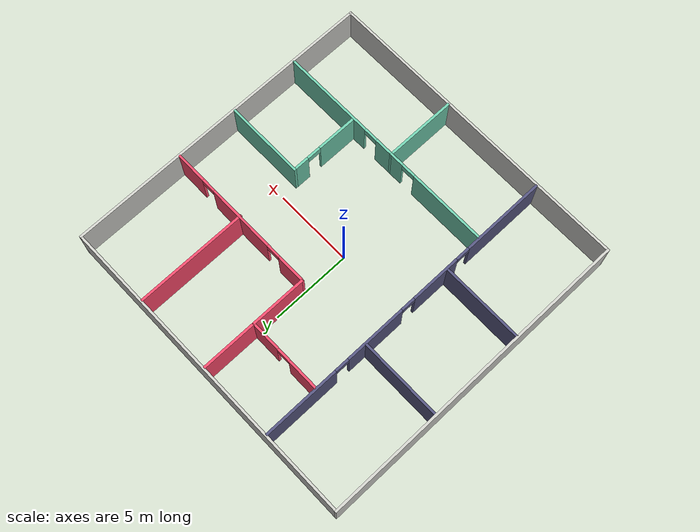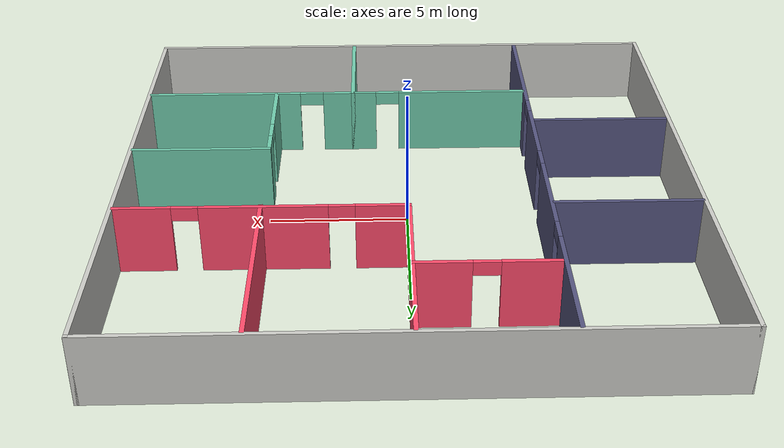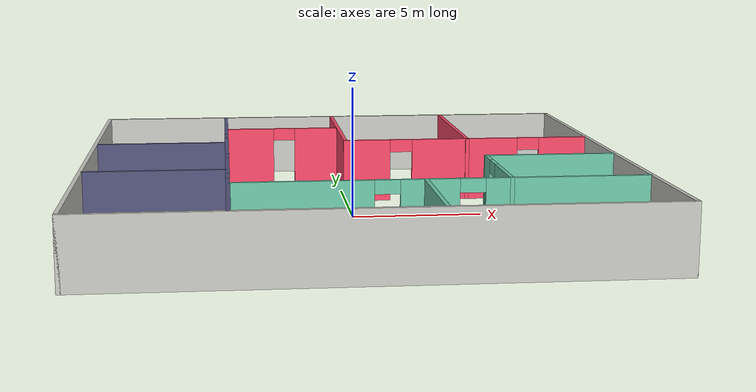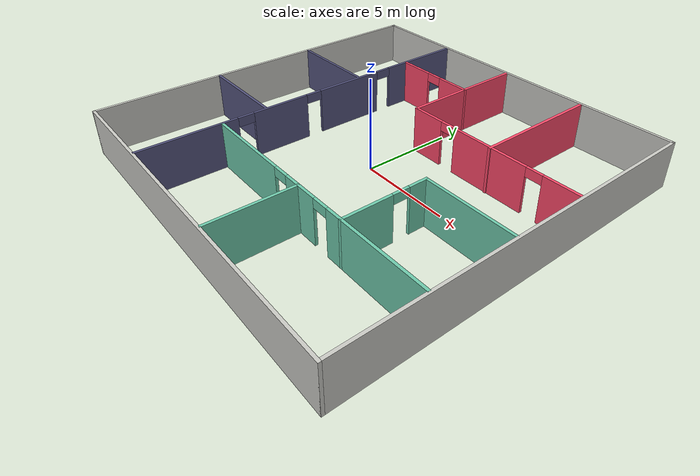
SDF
<?xml version='1.0'?>
<sdf version='1.6'>
  <model name='building'>
    <pose frame=''>0 0 0 0 -0 0</pose>
    <link name='Wall_0'>
      <collision name='Wall_0_Collision'>
        <geometry>
          <box>
            <size>20.15 0.15 2.5</size>
          </box>
        </geometry>
        <pose frame=''>0 0 1.25 0 -0 0</pose>
      </collision>
      <visual name='Wall_0_Visual'>
        <pose frame=''>0 0 1.25 0 -0 0</pose>
        <geometry>
          <box>
            <size>20.15 0.15 2.5</size>
          </box>
        </geometry>
        <material>
          <script>
            <uri>file://media/materials/scripts/gazebo.material</uri>
            <name>Gazebo/CeilingTiled</name>
          </script>
          <ambient>1 1 1 1</ambient>
        </material>
        <meta>
          <layer>0</layer>
        </meta>
      </visual>
      <pose frame=''>0 -10 0 0 -0 0</pose>
    </link>
    <link name='Wall_11'>
      <collision name='Wall_11_Collision'>
        <geometry>
          <box>
            <size>4.55 0.15 2.5</size>
          </box>
        </geometry>
        <pose frame=''>0 0 1.25 0 -0 0</pose>
      </collision>
      <visual name='Wall_11_Visual'>
        <pose frame=''>0 0 1.25 0 -0 0</pose>
        <geometry>
          <box>
            <size>4.55 0.15 2.5</size>
          </box>
        </geometry>
        <material>
          <script>
            <uri>file://media/materials/scripts/gazebo.material</uri>
            <name>Gazebo/Grey</name>
          </script>
          <ambient>0.435294 0.796078 0.67451 1</ambient>
        </material>
        <meta>
          <layer>0</layer>
        </meta>
      </visual>
      <pose frame=''>2 -7.7 0 0 0 -1.5708</pose>
    </link>
    <link name='Wall_13'>
      <pose frame=''>-2.35 6.5 0 0 -0 0</pose>
      <visual name='Wall_13_Visual_0'>
        <pose frame=''>-1.42755 0 1.25 0 -0 0</pose>
        <geometry>
          <box>
            <size>1.99489 0.15 2.5</size>
          </box>
        </geometry>
        <material>
          <script>
            <uri>file://media/materials/scripts/gazebo.material</uri>
            <name>Gazebo/Grey</name>
          </script>
          <ambient>1 0.290196 0.419608 1</ambient>
        </material>
        <meta>
          <layer>0</layer>
        </meta>
      </visual>
      <collision name='Wall_13_Collision_0'>
        <geometry>
          <box>
            <size>1.99489 0.15 2.5</size>
          </box>
        </geometry>
        <pose frame=''>-1.42755 0 1.25 0 -0 0</pose>
      </collision>
      <visual name='Wall_13_Visual_1'>
        <pose frame=''>1.44745 0 1.25 0 -0 0</pose>
        <geometry>
          <box>
            <size>1.95511 0.15 2.5</size>
          </box>
        </geometry>
        <material>
          <script>
            <uri>file://media/materials/scripts/gazebo.material</uri>
            <name>Gazebo/Grey</name>
          </script>
          <ambient>1 0.290196 0.419608 1</ambient>
        </material>
        <meta>
          <layer>0</layer>
        </meta>
      </visual>
      <collision name='Wall_13_Collision_1'>
        <geometry>
          <box>
            <size>1.95511 0.15 2.5</size>
          </box>
        </geometry>
        <pose frame=''>1.44745 0 1.25 0 -0 0</pose>
      </collision>
      <visual name='Wall_13_Visual_2'>
        <pose frame=''>0.019894 0 2.25 0 -0 0</pose>
        <geometry>
          <box>
            <size>0.9 0.15 0.5</size>
          </box>
        </geometry>
        <material>
          <script>
            <uri>file://media/materials/scripts/gazebo.material</uri>
            <name>Gazebo/Grey</name>
          </script>
          <ambient>1 0.290196 0.419608 1</ambient>
        </material>
        <meta>
          <layer>0</layer>
        </meta>
      </visual>
      <collision name='Wall_13_Collision_2'>
        <geometry>
          <box>
            <size>0.9 0.15 0.5</size>
          </box>
        </geometry>
        <pose frame=''>0.019894 0 2.25 0 -0 0</pose>
      </collision>
    </link>
    <link name='Wall_19'>
      <collision name='Wall_19_Collision'>
        <geometry>
          <box>
            <size>7.05 0.15 2.5</size>
          </box>
        </geometry>
        <pose frame=''>0 0 1.25 0 -0 0</pose>
      </collision>
      <visual name='Wall_19_Visual'>
        <pose frame=''>0 0 1.25 0 -0 0</pose>
        <geometry>
          <box>
            <size>7.05 0.15 2.5</size>
          </box>
        </geometry>
        <material>
          <script>
            <uri>file://media/materials/scripts/gazebo.material</uri>
            <name>Gazebo/Grey</name>
          </script>
          <ambient>1 0.290196 0.419608 1</ambient>
        </material>
        <meta>
          <layer>0</layer>
        </meta>
      </visual>
      <pose frame=''>5 6.45 0 0 -0 1.5708</pose>
    </link>
    <link name='Wall_2'>
      <collision name='Wall_2_Collision'>
        <geometry>
          <box>
            <size>20.15 0.15 2.5</size>
          </box>
        </geometry>
        <pose frame=''>0 0 1.25 0 -0 0</pose>
      </collision>
      <visual name='Wall_2_Visual'>
        <pose frame=''>0 0 1.25 0 -0 0</pose>
        <geometry>
          <box>
            <size>20.15 0.15 2.5</size>
          </box>
        </geometry>
        <material>
          <script>
            <uri>file://media/materials/scripts/gazebo.material</uri>
            <name>Gazebo/CeilingTiled</name>
          </script>
          <ambient>1 1 1 1</ambient>
        </material>
        <meta>
          <layer>0</layer>
        </meta>
      </visual>
      <pose frame=''>-10 0 0 0 -0 1.5708</pose>
    </link>
    <link name='Wall_21'>
      <collision name='Wall_21_Collision'>
        <geometry>
          <box>
            <size>5.15 0.15 2.5</size>
          </box>
        </geometry>
        <pose frame=''>0 0 1.25 0 -0 0</pose>
      </collision>
      <visual name='Wall_21_Visual'>
        <pose frame=''>0 0 1.25 0 -0 0</pose>
        <geometry>
          <box>
            <size>5.15 0.15 2.5</size>
          </box>
        </geometry>
        <material>
          <script>
            <uri>file://media/materials/scripts/gazebo.material</uri>
            <name>Gazebo/Grey</name>
          </script>
          <ambient>0.333333 0.333333 0.498039 1</ambient>
        </material>
        <meta>
          <layer>0</layer>
        </meta>
      </visual>
      <pose frame=''>-7.4 3 0 0 -0 3.14159</pose>
    </link>
    <link name='Wall_23'>
      <collision name='Wall_23_Collision'>
        <geometry>
          <box>
            <size>6.95695 0.15 2.5</size>
          </box>
        </geometry>
        <pose frame=''>0 0 1.25 0 -0 0</pose>
      </collision>
      <visual name='Wall_23_Visual'>
        <pose frame=''>0 0 1.25 0 -0 0</pose>
        <geometry>
          <box>
            <size>6.95695 0.15 2.5</size>
          </box>
        </geometry>
        <material>
          <script>
            <uri>file://media/materials/scripts/gazebo.material</uri>
            <name>Gazebo/Grey</name>
          </script>
          <ambient>1 0.290196 0.419608 1</ambient>
        </material>
        <meta>
          <layer>0</layer>
        </meta>
      </visual>
      <pose frame=''>0 6.49652 0 0 -0 1.5708</pose>
    </link>
    <link name='Wall_25'>
      <pose frame=''>4.95 3.04652 0 0 -0 0</pose>
      <visual name='Wall_25_Visual_0'>
        <pose frame=''>-4.07462 0 1.25 0 -0 0</pose>
        <geometry>
          <box>
            <size>1.90076 0.15 2.5</size>
          </box>
        </geometry>
        <material>
          <script>
            <uri>file://media/materials/scripts/gazebo.material</uri>
            <name>Gazebo/Grey</name>
          </script>
          <ambient>1 0.290196 0.419608 1</ambient>
        </material>
        <meta>
          <layer>0</layer>
        </meta>
      </visual>
      <collision name='Wall_25_Collision_0'>
        <geometry>
          <box>
            <size>1.90076 0.15 2.5</size>
          </box>
        </geometry>
        <pose frame=''>-4.07462 0 1.25 0 -0 0</pose>
      </collision>
      <visual name='Wall_25_Visual_1'>
        <pose frame=''>-0.045637 0 1.25 0 -0 0</pose>
        <geometry>
          <box>
            <size>4.3572 0.15 2.5</size>
          </box>
        </geometry>
        <material>
          <script>
            <uri>file://media/materials/scripts/gazebo.material</uri>
            <name>Gazebo/Grey</name>
          </script>
          <ambient>1 0.290196 0.419608 1</ambient>
        </material>
        <meta>
          <layer>0</layer>
        </meta>
      </visual>
      <collision name='Wall_25_Collision_1'>
        <geometry>
          <box>
            <size>4.3572 0.15 2.5</size>
          </box>
        </geometry>
        <pose frame=''>-0.045637 0 1.25 0 -0 0</pose>
      </collision>
      <visual name='Wall_25_Visual_2'>
        <pose frame=''>4.02898 0 1.25 0 -0 0</pose>
        <geometry>
          <box>
            <size>1.99204 0.15 2.5</size>
          </box>
        </geometry>
        <material>
          <script>
            <uri>file://media/materials/scripts/gazebo.material</uri>
            <name>Gazebo/Grey</name>
          </script>
          <ambient>1 0.290196 0.419608 1</ambient>
        </material>
        <meta>
          <layer>0</layer>
        </meta>
      </visual>
      <collision name='Wall_25_Collision_2'>
        <geometry>
          <box>
            <size>1.99204 0.15 2.5</size>
          </box>
        </geometry>
        <pose frame=''>4.02898 0 1.25 0 -0 0</pose>
      </collision>
      <visual name='Wall_25_Visual_3'>
        <pose frame=''>-2.67424 0 2.25 0 -0 0</pose>
        <geometry>
          <box>
            <size>0.9 0.15 0.5</size>
          </box>
        </geometry>
        <material>
          <script>
            <uri>file://media/materials/scripts/gazebo.material</uri>
            <name>Gazebo/Grey</name>
          </script>
          <ambient>1 0.290196 0.419608 1</ambient>
        </material>
        <meta>
          <layer>0</layer>
        </meta>
      </visual>
      <collision name='Wall_25_Collision_3'>
        <geometry>
          <box>
            <size>0.9 0.15 0.5</size>
          </box>
        </geometry>
        <pose frame=''>-2.67424 0 2.25 0 -0 0</pose>
      </collision>
      <visual name='Wall_25_Visual_4'>
        <pose frame=''>2.58296 0 2.25 0 -0 0</pose>
        <geometry>
          <box>
            <size>0.9 0.15 0.5</size>
          </box>
        </geometry>
        <material>
          <script>
            <uri>file://media/materials/scripts/gazebo.material</uri>
            <name>Gazebo/Grey</name>
          </script>
          <ambient>1 0.290196 0.419608 1</ambient>
        </material>
        <meta>
          <layer>0</layer>
        </meta>
      </visual>
      <collision name='Wall_25_Collision_4'>
        <geometry>
          <box>
            <size>0.9 0.15 0.5</size>
          </box>
        </geometry>
        <pose frame=''>2.58296 0 2.25 0 -0 0</pose>
      </collision>
    </link>
    <link name='Wall_27'>
      <pose frame=''>5 -3.25 0 0 0 -1.5708</pose>
      <visual name='Wall_27_Visual_0'>
        <pose frame=''>-1.79644 0 1.25 0 -0 0</pose>
        <geometry>
          <box>
            <size>1.05711 0.15 2.5</size>
          </box>
        </geometry>
        <material>
          <script>
            <uri>file://media/materials/scripts/gazebo.material</uri>
            <name>Gazebo/Grey</name>
          </script>
          <ambient>0.435294 0.796078 0.67451 1</ambient>
        </material>
        <meta>
          <layer>0</layer>
        </meta>
      </visual>
      <collision name='Wall_27_Collision_0'>
        <geometry>
          <box>
            <size>1.05711 0.15 2.5</size>
          </box>
        </geometry>
        <pose frame=''>-1.79644 0 1.25 0 -0 0</pose>
      </collision>
      <visual name='Wall_27_Visual_1'>
        <pose frame=''>0.978556 0 1.25 0 -0 0</pose>
        <geometry>
          <box>
            <size>2.69289 0.15 2.5</size>
          </box>
        </geometry>
        <material>
          <script>
            <uri>file://media/materials/scripts/gazebo.material</uri>
            <name>Gazebo/Grey</name>
          </script>
          <ambient>0.435294 0.796078 0.67451 1</ambient>
        </material>
        <meta>
          <layer>0</layer>
        </meta>
      </visual>
      <collision name='Wall_27_Collision_1'>
        <geometry>
          <box>
            <size>2.69289 0.15 2.5</size>
          </box>
        </geometry>
        <pose frame=''>0.978556 0 1.25 0 -0 0</pose>
      </collision>
      <visual name='Wall_27_Visual_2'>
        <pose frame=''>-0.817888 0 2.25 0 -0 0</pose>
        <geometry>
          <box>
            <size>0.9 0.15 0.5</size>
          </box>
        </geometry>
        <material>
          <script>
            <uri>file://media/materials/scripts/gazebo.material</uri>
            <name>Gazebo/Grey</name>
          </script>
          <ambient>0.435294 0.796078 0.67451 1</ambient>
        </material>
        <meta>
          <layer>0</layer>
        </meta>
      </visual>
      <collision name='Wall_27_Collision_2'>
        <geometry>
          <box>
            <size>0.9 0.15 0.5</size>
          </box>
        </geometry>
        <pose frame=''>-0.817888 0 2.25 0 -0 0</pose>
      </collision>
    </link>
    <link name='Wall_29'>
      <collision name='Wall_29_Collision'>
        <geometry>
          <box>
            <size>5.05 0.15 2.5</size>
          </box>
        </geometry>
        <pose frame=''>0 0 1.25 0 -0 0</pose>
      </collision>
      <visual name='Wall_29_Visual'>
        <pose frame=''>0 0 1.25 0 -0 0</pose>
        <geometry>
          <box>
            <size>5.05 0.15 2.5</size>
          </box>
        </geometry>
        <material>
          <script>
            <uri>file://media/materials/scripts/gazebo.material</uri>
            <name>Gazebo/Grey</name>
          </script>
          <ambient>0.435294 0.796078 0.67451 1</ambient>
        </material>
        <meta>
          <layer>0</layer>
        </meta>
      </visual>
      <pose frame=''>7.45 -1 0 0 -0 0</pose>
    </link>
    <link name='Wall_3'>
      <collision name='Wall_3_Collision'>
        <geometry>
          <box>
            <size>20.15 0.15 2.5</size>
          </box>
        </geometry>
        <pose frame=''>0 0 1.25 0 -0 0</pose>
      </collision>
      <visual name='Wall_3_Visual'>
        <pose frame=''>0 0 1.25 0 -0 0</pose>
        <geometry>
          <box>
            <size>20.15 0.15 2.5</size>
          </box>
        </geometry>
        <material>
          <script>
            <uri>file://media/materials/scripts/gazebo.material</uri>
            <name>Gazebo/CeilingTiled</name>
          </script>
          <ambient>1 1 1 1</ambient>
        </material>
        <meta>
          <layer>0</layer>
        </meta>
      </visual>
      <pose frame=''>0 10 0 0 -0 0</pose>
    </link>
    <link name='Wall_31'>
      <collision name='Wall_31_Collision'>
        <geometry>
          <box>
            <size>5.15 0.15 2.5</size>
          </box>
        </geometry>
        <pose frame=''>0 0 1.25 0 -0 0</pose>
      </collision>
      <visual name='Wall_31_Visual'>
        <pose frame=''>0 0 1.25 0 -0 0</pose>
        <geometry>
          <box>
            <size>5.15 0.15 2.5</size>
          </box>
        </geometry>
        <material>
          <script>
            <uri>file://media/materials/scripts/gazebo.material</uri>
            <name>Gazebo/Grey</name>
          </script>
          <ambient>0.333333 0.333333 0.498039 1</ambient>
        </material>
        <meta>
          <layer>0</layer>
        </meta>
      </visual>
      <pose frame=''>-7.4 -3 0 0 -0 3.14159</pose>
    </link>
    <link name='Wall_4'>
      <collision name='Wall_4_Collision'>
        <geometry>
          <box>
            <size>20.15 0.15 2.5</size>
          </box>
        </geometry>
        <pose frame=''>0 0 1.25 0 -0 0</pose>
      </collision>
      <visual name='Wall_4_Visual'>
        <pose frame=''>0 0 1.25 0 -0 0</pose>
        <geometry>
          <box>
            <size>20.15 0.15 2.5</size>
          </box>
        </geometry>
        <material>
          <script>
            <uri>file://media/materials/scripts/gazebo.material</uri>
            <name>Gazebo/CeilingTiled</name>
          </script>
          <ambient>1 1 1 1</ambient>
        </material>
        <meta>
          <layer>0</layer>
        </meta>
      </visual>
      <pose frame=''>10 0 0 0 0 -1.5708</pose>
    </link>
    <link name='Wall_6'>
      <pose frame=''>-4.8 0 0 0 -0 1.5708</pose>
      <visual name='Wall_6_Visual_0'>
        <pose frame=''>-7.31251 0 1.25 0 -0 0</pose>
        <geometry>
          <box>
            <size>5.32498 0.15 2.5</size>
          </box>
        </geometry>
        <material>
          <script>
            <uri>file://media/materials/scripts/gazebo.material</uri>
            <name>Gazebo/Grey</name>
          </script>
          <ambient>0.333333 0.333333 0.498039 1</ambient>
        </material>
        <meta>
          <layer>0</layer>
        </meta>
      </visual>
      <collision name='Wall_6_Collision_0'>
        <geometry>
          <box>
            <size>5.32498 0.15 2.5</size>
          </box>
        </geometry>
        <pose frame=''>-7.31251 0 1.25 0 -0 0</pose>
      </collision>
      <visual name='Wall_6_Visual_1'>
        <pose frame=''>-2.15297 0 1.25 0 -0 0</pose>
        <geometry>
          <box>
            <size>3.1941 0.15 2.5</size>
          </box>
        </geometry>
        <material>
          <script>
            <uri>file://media/materials/scripts/gazebo.material</uri>
            <name>Gazebo/Grey</name>
          </script>
          <ambient>0.333333 0.333333 0.498039 1</ambient>
        </material>
        <meta>
          <layer>0</layer>
        </meta>
      </visual>
      <collision name='Wall_6_Collision_1'>
        <geometry>
          <box>
            <size>3.1941 0.15 2.5</size>
          </box>
        </geometry>
        <pose frame=''>-2.15297 0 1.25 0 -0 0</pose>
      </collision>
      <visual name='Wall_6_Visual_2'>
        <pose frame=''>2.29006 0 1.25 0 -0 0</pose>
        <geometry>
          <box>
            <size>3.89196 0.15 2.5</size>
          </box>
        </geometry>
        <material>
          <script>
            <uri>file://media/materials/scripts/gazebo.material</uri>
            <name>Gazebo/Grey</name>
          </script>
          <ambient>0.333333 0.333333 0.498039 1</ambient>
        </material>
        <meta>
          <layer>0</layer>
        </meta>
      </visual>
      <collision name='Wall_6_Collision_2'>
        <geometry>
          <box>
            <size>3.89196 0.15 2.5</size>
          </box>
        </geometry>
        <pose frame=''>2.29006 0 1.25 0 -0 0</pose>
      </collision>
      <visual name='Wall_6_Visual_3'>
        <pose frame=''>7.55552 0 1.25 0 -0 0</pose>
        <geometry>
          <box>
            <size>4.83895 0.15 2.5</size>
          </box>
        </geometry>
        <material>
          <script>
            <uri>file://media/materials/scripts/gazebo.material</uri>
            <name>Gazebo/Grey</name>
          </script>
          <ambient>0.333333 0.333333 0.498039 1</ambient>
        </material>
        <meta>
          <layer>0</layer>
        </meta>
      </visual>
      <collision name='Wall_6_Collision_3'>
        <geometry>
          <box>
            <size>4.83895 0.15 2.5</size>
          </box>
        </geometry>
        <pose frame=''>7.55552 0 1.25 0 -0 0</pose>
      </collision>
      <visual name='Wall_6_Visual_4'>
        <pose frame=''>-4.20002 0 2.25 0 -0 0</pose>
        <geometry>
          <box>
            <size>0.9 0.15 0.5</size>
          </box>
        </geometry>
        <material>
          <script>
            <uri>file://media/materials/scripts/gazebo.material</uri>
            <name>Gazebo/Grey</name>
          </script>
          <ambient>0.333333 0.333333 0.498039 1</ambient>
        </material>
        <meta>
          <layer>0</layer>
        </meta>
      </visual>
      <collision name='Wall_6_Collision_4'>
        <geometry>
          <box>
            <size>0.9 0.15 0.5</size>
          </box>
        </geometry>
        <pose frame=''>-4.20002 0 2.25 0 -0 0</pose>
      </collision>
      <visual name='Wall_6_Visual_5'>
        <pose frame=''>-0.105917 0 2.25 0 -0 0</pose>
        <geometry>
          <box>
            <size>0.9 0.15 0.5</size>
          </box>
        </geometry>
        <material>
          <script>
            <uri>file://media/materials/scripts/gazebo.material</uri>
            <name>Gazebo/Grey</name>
          </script>
          <ambient>0.333333 0.333333 0.498039 1</ambient>
        </material>
        <meta>
          <layer>0</layer>
        </meta>
      </visual>
      <collision name='Wall_6_Collision_5'>
        <geometry>
          <box>
            <size>0.9 0.15 0.5</size>
          </box>
        </geometry>
        <pose frame=''>-0.105917 0 2.25 0 -0 0</pose>
      </collision>
      <visual name='Wall_6_Visual_6'>
        <pose frame=''>4.68605 0 2.25 0 -0 0</pose>
        <geometry>
          <box>
            <size>0.9 0.15 0.5</size>
          </box>
        </geometry>
        <material>
          <script>
            <uri>file://media/materials/scripts/gazebo.material</uri>
            <name>Gazebo/Grey</name>
          </script>
          <ambient>0.333333 0.333333 0.498039 1</ambient>
        </material>
        <meta>
          <layer>0</layer>
        </meta>
      </visual>
      <collision name='Wall_6_Collision_6'>
        <geometry>
          <box>
            <size>0.9 0.15 0.5</size>
          </box>
        </geometry>
        <pose frame=''>4.68605 0 2.25 0 -0 0</pose>
      </collision>
    </link>
    <link name='Wall_8'>
      <pose frame=''>2.6 -5.5 0 0 -0 0</pose>
      <visual name='Wall_8_Visual_0'>
        <pose frame=''>-4.88879 0 1.25 0 -0 0</pose>
        <geometry>
          <box>
            <size>4.97243 0.15 2.5</size>
          </box>
        </geometry>
        <material>
          <script>
            <uri>file://media/materials/scripts/gazebo.material</uri>
            <name>Gazebo/Grey</name>
          </script>
          <ambient>0.435294 0.796078 0.67451 1</ambient>
        </material>
        <meta>
          <layer>0</layer>
        </meta>
      </visual>
      <collision name='Wall_8_Collision_0'>
        <geometry>
          <box>
            <size>4.97243 0.15 2.5</size>
          </box>
        </geometry>
        <pose frame=''>-4.88879 0 1.25 0 -0 0</pose>
      </collision>
      <visual name='Wall_8_Visual_1'>
        <pose frame=''>-0.46381 0 1.25 0 -0 0</pose>
        <geometry>
          <box>
            <size>2.07753 0.15 2.5</size>
          </box>
        </geometry>
        <material>
          <script>
            <uri>file://media/materials/scripts/gazebo.material</uri>
            <name>Gazebo/Grey</name>
          </script>
          <ambient>0.435294 0.796078 0.67451 1</ambient>
        </material>
        <meta>
          <layer>0</layer>
        </meta>
      </visual>
      <collision name='Wall_8_Collision_1'>
        <geometry>
          <box>
            <size>2.07753 0.15 2.5</size>
          </box>
        </geometry>
        <pose frame=''>-0.46381 0 1.25 0 -0 0</pose>
      </collision>
      <visual name='Wall_8_Visual_2'>
        <pose frame=''>4.42498 0 1.25 0 -0 0</pose>
        <geometry>
          <box>
            <size>5.90005 0.15 2.5</size>
          </box>
        </geometry>
        <material>
          <script>
            <uri>file://media/materials/scripts/gazebo.material</uri>
            <name>Gazebo/Grey</name>
          </script>
          <ambient>0.435294 0.796078 0.67451 1</ambient>
        </material>
        <meta>
          <layer>0</layer>
        </meta>
      </visual>
      <collision name='Wall_8_Collision_2'>
        <geometry>
          <box>
            <size>5.90005 0.15 2.5</size>
          </box>
        </geometry>
        <pose frame=''>4.42498 0 1.25 0 -0 0</pose>
      </collision>
      <visual name='Wall_8_Visual_3'>
        <pose frame=''>-1.95257 0 2.25 0 -0 0</pose>
        <geometry>
          <box>
            <size>0.9 0.15 0.5</size>
          </box>
        </geometry>
        <material>
          <script>
            <uri>file://media/materials/scripts/gazebo.material</uri>
            <name>Gazebo/Grey</name>
          </script>
          <ambient>0.435294 0.796078 0.67451 1</ambient>
        </material>
        <meta>
          <layer>0</layer>
        </meta>
      </visual>
      <collision name='Wall_8_Collision_3'>
        <geometry>
          <box>
            <size>0.9 0.15 0.5</size>
          </box>
        </geometry>
        <pose frame=''>-1.95257 0 2.25 0 -0 0</pose>
      </collision>
      <visual name='Wall_8_Visual_4'>
        <pose frame=''>1.02496 0 2.25 0 -0 0</pose>
        <geometry>
          <box>
            <size>0.9 0.15 0.5</size>
          </box>
        </geometry>
        <material>
          <script>
            <uri>file://media/materials/scripts/gazebo.material</uri>
            <name>Gazebo/Grey</name>
          </script>
          <ambient>0.435294 0.796078 0.67451 1</ambient>
        </material>
        <meta>
          <layer>0</layer>
        </meta>
      </visual>
      <collision name='Wall_8_Collision_4'>
        <geometry>
          <box>
            <size>0.9 0.15 0.5</size>
          </box>
        </geometry>
        <pose frame=''>1.02496 0 2.25 0 -0 0</pose>
      </collision>
    </link>
    <static>1</static>
  </model>
</sdf>
